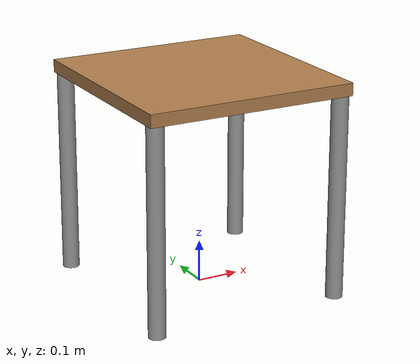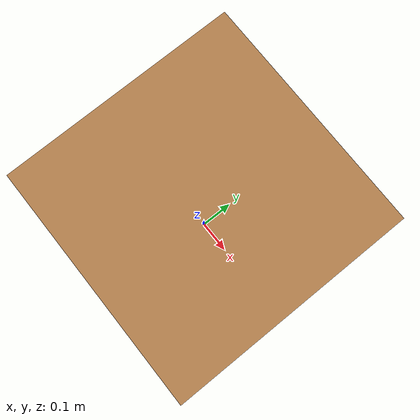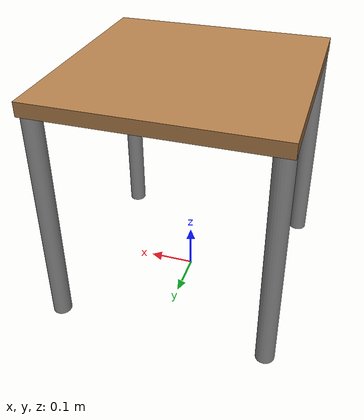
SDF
<?xml version="1.0" ?>
<sdf version='1.4'>
<model name='table_wood'>
      <static>1</static>
      <link name='link'>
        <collision name='surface'>
          <pose>0.000000 0.000000 0.500000 0.000000 0.000000 0.000000</pose>
          <geometry>
            <box>
              <size>0.500000 0.500000 0.030000</size>
            </box>
          </geometry>
          <surface>
            <bounce/>
            <friction>
              <ode/>
            </friction>
            <contact>
              <ode/>
            </contact>
          </surface>
        </collision>
        <visual name='visual1'>
          <pose>0.000000 0.000000 0.500000 0.000000 0.000000 0.000000</pose>
          <geometry>
            <box>
              <size>0.500000 0.500000 0.030000</size>
            </box>
          </geometry>
          <material>
            <script>
              <uri>file://media/materials/scripts/gazebo.material</uri>
              <name>Gazebo/Wood</name>
            </script>
          </material>
        </visual>
        <collision name='front_left_leg'>
          <pose>0.230000 0.230000 0.250000 0.000000 0.000000 0.000000</pose>
          <geometry>
            <cylinder>
              <radius>0.020000</radius>
              <length>0.500000</length>
            </cylinder>
          </geometry>
          <surface>
            <bounce/>
            <friction>
              <ode/>
            </friction>
            <contact>
              <ode/>
            </contact>
          </surface>
        </collision>
        <visual name='front_left_leg'>
          <pose>0.230000 0.230000 0.250000 0.000000 0.000000 0.000000</pose>
          <geometry>
            <cylinder>
              <radius>0.020000</radius>
              <length>0.500000</length>
            </cylinder>
          </geometry>
          <material>
            <script>
              <uri>file://media/materials/scripts/gazebo.material</uri>
              <name>Gazebo/Grey</name>
            </script>
          </material>
        </visual>
        <collision name='front_right_leg'>
          <pose>0.230000 -0.230000 0.250000 0.000000 0.000000 0.000000</pose>
          <geometry>
            <cylinder>
              <radius>0.020000</radius>
              <length>0.500000</length>
            </cylinder>
          </geometry>
          <surface>
            <bounce/>
            <friction>
              <ode/>
            </friction>
            <contact>
              <ode/>
            </contact>
          </surface>
        </collision>
        <visual name='front_right_leg'>
          <pose>0.230000 -0.230000 0.250000 0.000000 0.000000 0.000000</pose>
          <geometry>
            <cylinder>
              <radius>0.020000</radius>
              <length>0.500000</length>
            </cylinder>
          </geometry>
          <material>
            <script>
              <uri>file://media/materials/scripts/gazebo.material</uri>
              <name>Gazebo/Grey</name>
            </script>
          </material>
        </visual>
        <collision name='back_right_leg'>
          <pose>-0.230000 -0.230000 0.250000 0.000000 0.000000 0.000000</pose>
          <geometry>
            <cylinder>
              <radius>0.020000</radius>
              <length>0.500000</length>
            </cylinder>
          </geometry>
          <surface>
            <bounce/>
            <friction>
              <ode/>
            </friction>
            <contact>
              <ode/>
            </contact>
          </surface>
        </collision>
        <visual name='back_right_leg'>
          <pose>-0.230000 -0.230000 0.250000 0.000000 0.000000 0.000000</pose>
          <geometry>
            <cylinder>
              <radius>0.020000</radius>
              <length>0.500000</length>
            </cylinder>
          </geometry>
          <material>
            <script>
              <uri>file://media/materials/scripts/gazebo.material</uri>
              <name>Gazebo/Grey</name>
            </script>
          </material>
        </visual>
        <collision name='back_left_leg'>
          <pose>-0.230000 0.230000 0.250000 0.000000 0.000000 0.000000</pose>
          <geometry>
            <cylinder>
              <radius>0.020000</radius>
              <length>0.500000</length>
            </cylinder>
          </geometry>
          <surface>
            <bounce/>
            <friction>
              <ode/>
            </friction>
            <contact>
              <ode/>
            </contact>
          </surface>
        </collision>
        <visual name='back_left_leg'>
          <pose>-0.230000 0.230000 0.250000 0.000000 0.000000 0.000000</pose>
          <geometry>
            <cylinder>
              <radius>0.020000</radius>
              <length>0.500000</length>
            </cylinder>
          </geometry>
          <material>
            <script>
              <uri>file://media/materials/scripts/gazebo.material</uri>
              <name>Gazebo/Grey</name>
            </script>
          </material>
        </visual>
        <velocity_decay>
          <linear>0.000000</linear>
          <angular>0.000000</angular>
        </velocity_decay>
        <self_collide>0</self_collide>
        <kinematic>0</kinematic>
        <gravity>1</gravity>
      </link>
    </model>
</sdf>
